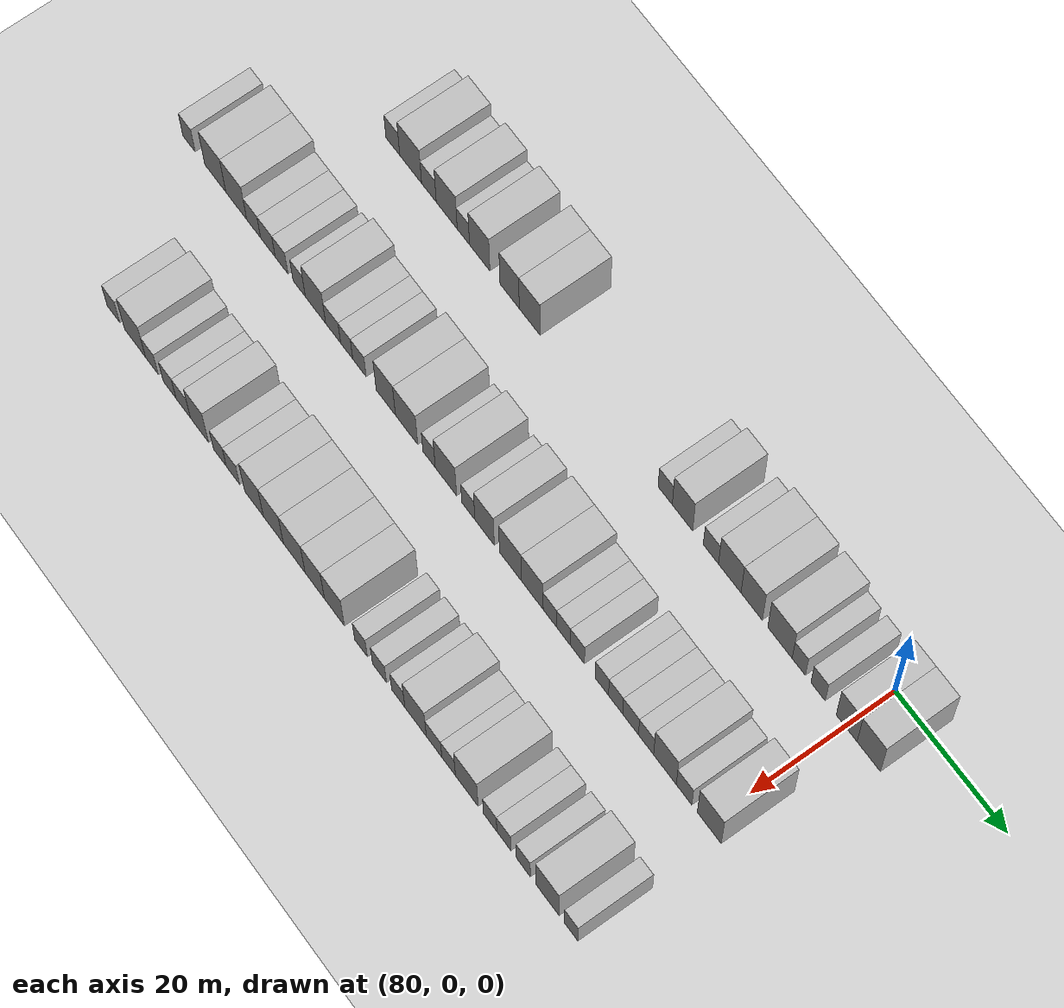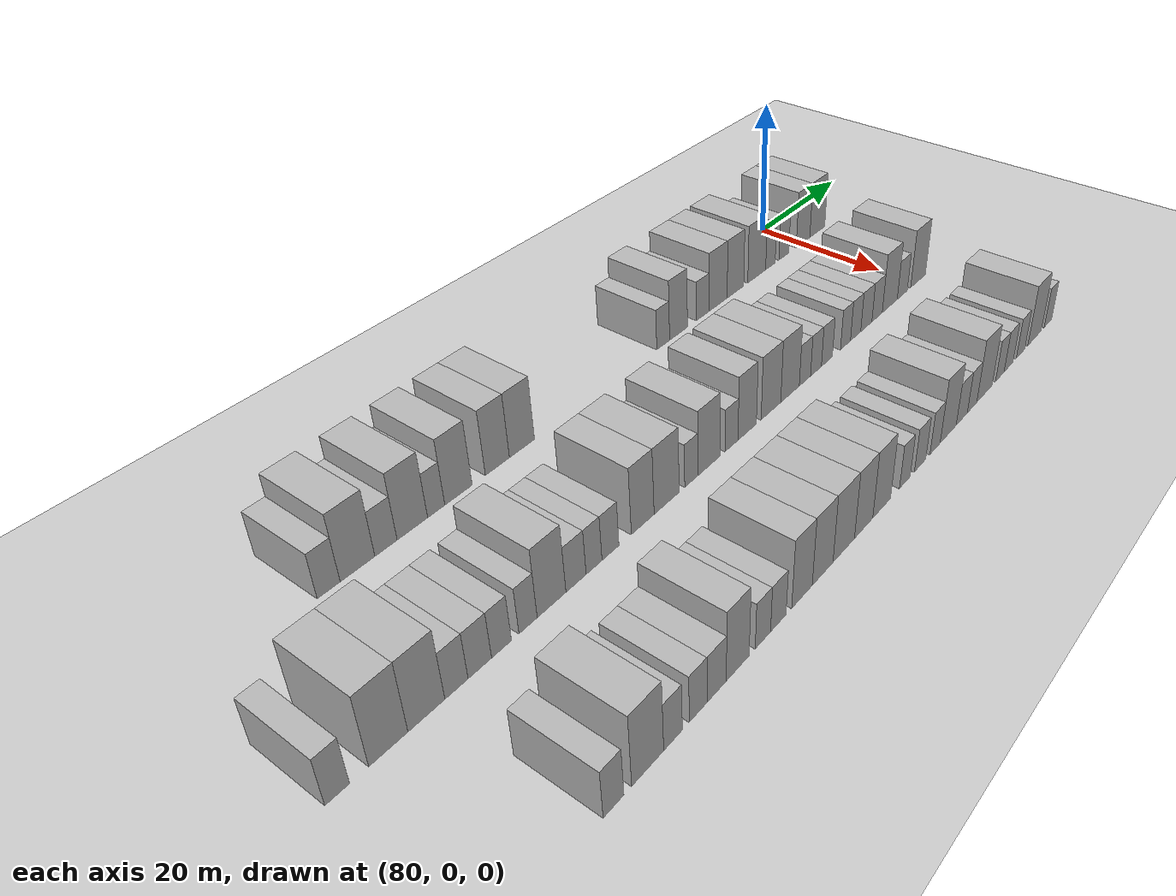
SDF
<sdf version="1.6">
 <world name="default">
  <include>
   <name>ground_plane_2</name>
   <uri>model://HANNAS_ground_plane</uri>
   <pose>100 0 0  0 0 0</pose>
  </include>
  <model name="building_565">
   <static>1</static>
   <pose>82.0000 -86.5752 0 0.000000 0.000000 0.000000</pose>
   <link name="link">
    <pose>0 0 3.00 0 0 0</pose>
    <collision name="collision"><geometry><box><size>10.0000 2.8046 6.0000</size></box></geometry></collision>
    <visual name="visual">
     <cast_shadows>0</cast_shadows>
     <geometry><box><size>10.0000 2.8046 6.0000</size></box></geometry>
     <material>
      <script>
       <uri>model://HANNAS_wall/materials/scripts</uri>
       <uri>model://HANNAS_wall/materials/textures</uri>
       <name>vrc/HANNAS_wall</name>
      </script>
     </material>
    </visual>
   </link>
  </model>
  <model name="building_566">
   <static>1</static>
   <pose>82.0000 -82.9776 0 0.000000 0.000000 0.000000</pose>
   <link name="link">
    <pose>0 0 4.50 0 0 0</pose>
    <collision name="collision"><geometry><box><size>10.0000 4.3905 9.0000</size></box></geometry></collision>
    <visual name="visual">
     <cast_shadows>0</cast_shadows>
     <geometry><box><size>10.0000 4.3905 9.0000</size></box></geometry>
     <material>
      <script>
       <uri>model://HANNAS_wall/materials/scripts</uri>
       <uri>model://HANNAS_wall/materials/textures</uri>
       <name>vrc/HANNAS_wall</name>
      </script>
     </material>
    </visual>
   </link>
  </model>
  <model name="building_567">
   <static>1</static>
   <pose>82.0000 -79.3139 0 0.000000 0.000000 0.000000</pose>
   <link name="link">
    <pose>0 0 3.00 0 0 0</pose>
    <collision name="collision"><geometry><box><size>10.0000 2.9370 6.0000</size></box></geometry></collision>
    <visual name="visual">
     <cast_shadows>0</cast_shadows>
     <geometry><box><size>10.0000 2.9370 6.0000</size></box></geometry>
     <material>
      <script>
       <uri>model://HANNAS_wall/materials/scripts</uri>
       <uri>model://HANNAS_wall/materials/textures</uri>
       <name>vrc/HANNAS_wall</name>
      </script>
     </material>
    </visual>
   </link>
  </model>
  <model name="building_568">
   <static>1</static>
   <pose>82.0000 -75.7535 0 0.000000 0.000000 0.000000</pose>
   <link name="link">
    <pose>0 0 4.50 0 0 0</pose>
    <collision name="collision"><geometry><box><size>10.0000 4.1837 9.0000</size></box></geometry></collision>
    <visual name="visual">
     <cast_shadows>0</cast_shadows>
     <geometry><box><size>10.0000 4.1837 9.0000</size></box></geometry>
     <material>
      <script>
       <uri>model://HANNAS_wall/materials/scripts</uri>
       <uri>model://HANNAS_wall/materials/textures</uri>
       <name>vrc/HANNAS_wall</name>
      </script>
     </material>
    </visual>
   </link>
  </model>
  <model name="building_569">
   <static>1</static>
   <pose>82.0000 -72.4386 0 0.000000 0.000000 0.000000</pose>
   <link name="link">
    <pose>0 0 3.00 0 0 0</pose>
    <collision name="collision"><geometry><box><size>10.0000 2.4463 6.0000</size></box></geometry></collision>
    <visual name="visual">
     <cast_shadows>0</cast_shadows>
     <geometry><box><size>10.0000 2.4463 6.0000</size></box></geometry>
     <material>
      <script>
       <uri>model://HANNAS_wall/materials/scripts</uri>
       <uri>model://HANNAS_wall/materials/textures</uri>
       <name>vrc/HANNAS_wall</name>
      </script>
     </material>
    </visual>
   </link>
  </model>
  <model name="building_570">
   <static>1</static>
   <pose>82.0000 -69.2033 0 0.000000 0.000000 0.000000</pose>
   <link name="link">
    <pose>0 0 4.50 0 0 0</pose>
    <collision name="collision"><geometry><box><size>10.0000 4.0243 9.0000</size></box></geometry></collision>
    <visual name="visual">
     <cast_shadows>0</cast_shadows>
     <geometry><box><size>10.0000 4.0243 9.0000</size></box></geometry>
     <material>
      <script>
       <uri>model://HANNAS_wall/materials/scripts</uri>
       <uri>model://HANNAS_wall/materials/textures</uri>
       <name>vrc/HANNAS_wall</name>
      </script>
     </material>
    </visual>
   </link>
  </model>
  <model name="building_571">
   <static>1</static>
   <pose>82.0000 -63.3000 0 0.000000 0.000000 0.000000</pose>
   <link name="link">
    <pose>0 0 4.50 0 0 0</pose>
    <collision name="collision"><geometry><box><size>10.0000 3.7823 9.0000</size></box></geometry></collision>
    <visual name="visual">
     <cast_shadows>0</cast_shadows>
     <geometry><box><size>10.0000 3.7823 9.0000</size></box></geometry>
     <material>
      <script>
       <uri>model://HANNAS_wall/materials/scripts</uri>
       <uri>model://HANNAS_wall/materials/textures</uri>
       <name>vrc/HANNAS_wall</name>
      </script>
     </material>
    </visual>
   </link>
  </model>
  <model name="building_572">
   <static>1</static>
   <pose>82.0000 -59.3717 0 0.000000 0.000000 0.000000</pose>
   <link name="link">
    <pose>0 0 4.50 0 0 0</pose>
    <collision name="collision"><geometry><box><size>10.0000 4.0742 9.0000</size></box></geometry></collision>
    <visual name="visual">
     <cast_shadows>0</cast_shadows>
     <geometry><box><size>10.0000 4.0742 9.0000</size></box></geometry>
     <material>
      <script>
       <uri>model://HANNAS_wall/materials/scripts</uri>
       <uri>model://HANNAS_wall/materials/textures</uri>
       <name>vrc/HANNAS_wall</name>
      </script>
     </material>
    </visual>
   </link>
  </model>
  <model name="building_573">
   <static>1</static>
   <pose>82.0000 -33.3156 0 0.000000 0.000000 0.000000</pose>
   <link name="link">
    <pose>0 0 3.00 0 0 0</pose>
    <collision name="collision"><geometry><box><size>10.0000 2.6793 6.0000</size></box></geometry></collision>
    <visual name="visual">
     <cast_shadows>0</cast_shadows>
     <geometry><box><size>10.0000 2.6793 6.0000</size></box></geometry>
     <material>
      <script>
       <uri>model://HANNAS_wall/materials/scripts</uri>
       <uri>model://HANNAS_wall/materials/textures</uri>
       <name>vrc/HANNAS_wall</name>
      </script>
     </material>
    </visual>
   </link>
  </model>
  <model name="building_574">
   <static>1</static>
   <pose>82.0000 -30.0600 0 0.000000 0.000000 0.000000</pose>
   <link name="link">
    <pose>0 0 4.50 0 0 0</pose>
    <collision name="collision"><geometry><box><size>10.0000 3.8319 9.0000</size></box></geometry></collision>
    <visual name="visual">
     <cast_shadows>0</cast_shadows>
     <geometry><box><size>10.0000 3.8319 9.0000</size></box></geometry>
     <material>
      <script>
       <uri>model://HANNAS_wall/materials/scripts</uri>
       <uri>model://HANNAS_wall/materials/textures</uri>
       <name>vrc/HANNAS_wall</name>
      </script>
     </material>
    </visual>
   </link>
  </model>
  <model name="building_575">
   <static>1</static>
   <pose>82.0000 -24.7283 0 0.000000 0.000000 0.000000</pose>
   <link name="link">
    <pose>0 0 3.00 0 0 0</pose>
    <collision name="collision"><geometry><box><size>10.0000 2.8315 6.0000</size></box></geometry></collision>
    <visual name="visual">
     <cast_shadows>0</cast_shadows>
     <geometry><box><size>10.0000 2.8315 6.0000</size></box></geometry>
     <material>
      <script>
       <uri>model://HANNAS_wall/materials/scripts</uri>
       <uri>model://HANNAS_wall/materials/textures</uri>
       <name>vrc/HANNAS_wall</name>
      </script>
     </material>
    </visual>
   </link>
  </model>
  <model name="building_576">
   <static>1</static>
   <pose>82.0000 -21.2152 0 0.000000 0.000000 0.000000</pose>
   <link name="link">
    <pose>0 0 4.50 0 0 0</pose>
    <collision name="collision"><geometry><box><size>10.0000 4.1946 9.0000</size></box></geometry></collision>
    <visual name="visual">
     <cast_shadows>0</cast_shadows>
     <geometry><box><size>10.0000 4.1946 9.0000</size></box></geometry>
     <material>
      <script>
       <uri>model://HANNAS_wall/materials/scripts</uri>
       <uri>model://HANNAS_wall/materials/textures</uri>
       <name>vrc/HANNAS_wall</name>
      </script>
     </material>
    </visual>
   </link>
  </model>
  <model name="building_577">
   <static>1</static>
   <pose>82.0000 -17.1370 0 0.000000 0.000000 0.000000</pose>
   <link name="link">
    <pose>0 0 4.50 0 0 0</pose>
    <collision name="collision"><geometry><box><size>10.0000 3.9616 9.0000</size></box></geometry></collision>
    <visual name="visual">
     <cast_shadows>0</cast_shadows>
     <geometry><box><size>10.0000 3.9616 9.0000</size></box></geometry>
     <material>
      <script>
       <uri>model://HANNAS_wall/materials/scripts</uri>
       <uri>model://HANNAS_wall/materials/textures</uri>
       <name>vrc/HANNAS_wall</name>
      </script>
     </material>
    </visual>
   </link>
  </model>
  <model name="building_578">
   <static>1</static>
   <pose>82.0000 -11.9134 0 0.000000 0.000000 0.000000</pose>
   <link name="link">
    <pose>0 0 4.50 0 0 0</pose>
    <collision name="collision"><geometry><box><size>10.0000 4.4856 9.0000</size></box></geometry></collision>
    <visual name="visual">
     <cast_shadows>0</cast_shadows>
     <geometry><box><size>10.0000 4.4856 9.0000</size></box></geometry>
     <material>
      <script>
       <uri>model://HANNAS_wall/materials/scripts</uri>
       <uri>model://HANNAS_wall/materials/textures</uri>
       <name>vrc/HANNAS_wall</name>
      </script>
     </material>
    </visual>
   </link>
  </model>
  <model name="building_579">
   <static>1</static>
   <pose>82.0000 -8.4516 0 0.000000 0.000000 0.000000</pose>
   <link name="link">
    <pose>0 0 3.00 0 0 0</pose>
    <collision name="collision"><geometry><box><size>10.0000 2.4379 6.0000</size></box></geometry></collision>
    <visual name="visual">
     <cast_shadows>0</cast_shadows>
     <geometry><box><size>10.0000 2.4379 6.0000</size></box></geometry>
     <material>
      <script>
       <uri>model://HANNAS_wall/materials/scripts</uri>
       <uri>model://HANNAS_wall/materials/textures</uri>
       <name>vrc/HANNAS_wall</name>
      </script>
     </material>
    </visual>
   </link>
  </model>
  <model name="building_580">
   <static>1</static>
   <pose>82.0000 -4.9241 0 0.000000 0.000000 0.000000</pose>
   <link name="link">
    <pose>0 0 3.00 0 0 0</pose>
    <collision name="collision"><geometry><box><size>10.0000 2.6172 6.0000</size></box></geometry></collision>
    <visual name="visual">
     <cast_shadows>0</cast_shadows>
     <geometry><box><size>10.0000 2.6172 6.0000</size></box></geometry>
     <material>
      <script>
       <uri>model://HANNAS_wall/materials/scripts</uri>
       <uri>model://HANNAS_wall/materials/textures</uri>
       <name>vrc/HANNAS_wall</name>
      </script>
     </material>
    </visual>
   </link>
  </model>
  <model name="building_581">
   <static>1</static>
   <pose>82.0000 0.2677 0 0.000000 0.000000 0.000000</pose>
   <link name="link">
    <pose>0 0 4.50 0 0 0</pose>
    <collision name="collision"><geometry><box><size>10.0000 3.7663 9.0000</size></box></geometry></collision>
    <visual name="visual">
     <cast_shadows>0</cast_shadows>
     <geometry><box><size>10.0000 3.7663 9.0000</size></box></geometry>
     <material>
      <script>
       <uri>model://HANNAS_wall/materials/scripts</uri>
       <uri>model://HANNAS_wall/materials/textures</uri>
       <name>vrc/HANNAS_wall</name>
      </script>
     </material>
    </visual>
   </link>
  </model>
  <model name="building_582">
   <static>1</static>
   <pose>82.0000 4.2609 0 0.000000 0.000000 0.000000</pose>
   <link name="link">
    <pose>0 0 4.50 0 0 0</pose>
    <collision name="collision"><geometry><box><size>10.0000 4.2202 9.0000</size></box></geometry></collision>
    <visual name="visual">
     <cast_shadows>0</cast_shadows>
     <geometry><box><size>10.0000 4.2202 9.0000</size></box></geometry>
     <material>
      <script>
       <uri>model://HANNAS_wall/materials/scripts</uri>
       <uri>model://HANNAS_wall/materials/textures</uri>
       <name>vrc/HANNAS_wall</name>
      </script>
     </material>
    </visual>
   </link>
  </model>
  <model name="building_730">
   <static>1</static>
   <pose>101.0000 -100.7752 0 0.000000 0.000000 0.000000</pose>
   <link name="link">
    <pose>0 0 3.00 0 0 0</pose>
    <collision name="collision"><geometry><box><size>10.0000 2.5496 6.0000</size></box></geometry></collision>
    <visual name="visual">
     <cast_shadows>0</cast_shadows>
     <geometry><box><size>10.0000 2.5496 6.0000</size></box></geometry>
     <material>
      <script>
       <uri>model://HANNAS_wall/materials/scripts</uri>
       <uri>model://HANNAS_wall/materials/textures</uri>
       <name>vrc/HANNAS_wall</name>
      </script>
     </material>
    </visual>
   </link>
  </model>
  <model name="building_731">
   <static>1</static>
   <pose>101.0000 -95.3427 0 0.000000 0.000000 0.000000</pose>
   <link name="link">
    <pose>0 0 4.50 0 0 0</pose>
    <collision name="collision"><geometry><box><size>10.0000 4.3153 9.0000</size></box></geometry></collision>
    <visual name="visual">
     <cast_shadows>0</cast_shadows>
     <geometry><box><size>10.0000 4.3153 9.0000</size></box></geometry>
     <material>
      <script>
       <uri>model://HANNAS_wall/materials/scripts</uri>
       <uri>model://HANNAS_wall/materials/textures</uri>
       <name>vrc/HANNAS_wall</name>
      </script>
     </material>
    </visual>
   </link>
  </model>
  <model name="building_732">
   <static>1</static>
   <pose>101.0000 -91.0381 0 0.000000 0.000000 0.000000</pose>
   <link name="link">
    <pose>0 0 4.50 0 0 0</pose>
    <collision name="collision"><geometry><box><size>10.0000 4.2939 9.0000</size></box></geometry></collision>
    <visual name="visual">
     <cast_shadows>0</cast_shadows>
     <geometry><box><size>10.0000 4.2939 9.0000</size></box></geometry>
     <material>
      <script>
       <uri>model://HANNAS_wall/materials/scripts</uri>
       <uri>model://HANNAS_wall/materials/textures</uri>
       <name>vrc/HANNAS_wall</name>
      </script>
     </material>
    </visual>
   </link>
  </model>
  <model name="building_733">
   <static>1</static>
   <pose>101.0000 -87.4756 0 0.000000 0.000000 0.000000</pose>
   <link name="link">
    <pose>0 0 3.00 0 0 0</pose>
    <collision name="collision"><geometry><box><size>10.0000 2.8309 6.0000</size></box></geometry></collision>
    <visual name="visual">
     <cast_shadows>0</cast_shadows>
     <geometry><box><size>10.0000 2.8309 6.0000</size></box></geometry>
     <material>
      <script>
       <uri>model://HANNAS_wall/materials/scripts</uri>
       <uri>model://HANNAS_wall/materials/textures</uri>
       <name>vrc/HANNAS_wall</name>
      </script>
     </material>
    </visual>
   </link>
  </model>
  <model name="building_734">
   <static>1</static>
   <pose>101.0000 -84.5750 0 0.000000 0.000000 0.000000</pose>
   <link name="link">
    <pose>0 0 3.00 0 0 0</pose>
    <collision name="collision"><geometry><box><size>10.0000 2.9704 6.0000</size></box></geometry></collision>
    <visual name="visual">
     <cast_shadows>0</cast_shadows>
     <geometry><box><size>10.0000 2.9704 6.0000</size></box></geometry>
     <material>
      <script>
       <uri>model://HANNAS_wall/materials/scripts</uri>
       <uri>model://HANNAS_wall/materials/textures</uri>
       <name>vrc/HANNAS_wall</name>
      </script>
     </material>
    </visual>
   </link>
  </model>
  <model name="building_735">
   <static>1</static>
   <pose>101.0000 -81.7910 0 0.000000 0.000000 0.000000</pose>
   <link name="link">
    <pose>0 0 3.00 0 0 0</pose>
    <collision name="collision"><geometry><box><size>10.0000 2.5975 6.0000</size></box></geometry></collision>
    <visual name="visual">
     <cast_shadows>0</cast_shadows>
     <geometry><box><size>10.0000 2.5975 6.0000</size></box></geometry>
     <material>
      <script>
       <uri>model://HANNAS_wall/materials/scripts</uri>
       <uri>model://HANNAS_wall/materials/textures</uri>
       <name>vrc/HANNAS_wall</name>
      </script>
     </material>
    </visual>
   </link>
  </model>
  <model name="building_736">
   <static>1</static>
   <pose>101.0000 -78.2462 0 0.000000 0.000000 0.000000</pose>
   <link name="link">
    <pose>0 0 3.00 0 0 0</pose>
    <collision name="collision"><geometry><box><size>10.0000 2.4922 6.0000</size></box></geometry></collision>
    <visual name="visual">
     <cast_shadows>0</cast_shadows>
     <geometry><box><size>10.0000 2.4922 6.0000</size></box></geometry>
     <material>
      <script>
       <uri>model://HANNAS_wall/materials/scripts</uri>
       <uri>model://HANNAS_wall/materials/textures</uri>
       <name>vrc/HANNAS_wall</name>
      </script>
     </material>
    </visual>
   </link>
  </model>
  <model name="building_737">
   <static>1</static>
   <pose>101.0000 -74.9540 0 0.000000 0.000000 0.000000</pose>
   <link name="link">
    <pose>0 0 4.50 0 0 0</pose>
    <collision name="collision"><geometry><box><size>10.0000 4.0922 9.0000</size></box></geometry></collision>
    <visual name="visual">
     <cast_shadows>0</cast_shadows>
     <geometry><box><size>10.0000 4.0922 9.0000</size></box></geometry>
     <material>
      <script>
       <uri>model://HANNAS_wall/materials/scripts</uri>
       <uri>model://HANNAS_wall/materials/textures</uri>
       <name>vrc/HANNAS_wall</name>
      </script>
     </material>
    </visual>
   </link>
  </model>
  <model name="building_738">
   <static>1</static>
   <pose>101.0000 -71.4143 0 0.000000 0.000000 0.000000</pose>
   <link name="link">
    <pose>0 0 3.00 0 0 0</pose>
    <collision name="collision"><geometry><box><size>10.0000 2.9872 6.0000</size></box></geometry></collision>
    <visual name="visual">
     <cast_shadows>0</cast_shadows>
     <geometry><box><size>10.0000 2.9872 6.0000</size></box></geometry>
     <material>
      <script>
       <uri>model://HANNAS_wall/materials/scripts</uri>
       <uri>model://HANNAS_wall/materials/textures</uri>
       <name>vrc/HANNAS_wall</name>
      </script>
     </material>
    </visual>
   </link>
  </model>
  <model name="building_739">
   <static>1</static>
   <pose>101.0000 -68.7052 0 0.000000 0.000000 0.000000</pose>
   <link name="link">
    <pose>0 0 3.00 0 0 0</pose>
    <collision name="collision"><geometry><box><size>10.0000 2.4309 6.0000</size></box></geometry></collision>
    <visual name="visual">
     <cast_shadows>0</cast_shadows>
     <geometry><box><size>10.0000 2.4309 6.0000</size></box></geometry>
     <material>
      <script>
       <uri>model://HANNAS_wall/materials/scripts</uri>
       <uri>model://HANNAS_wall/materials/textures</uri>
       <name>vrc/HANNAS_wall</name>
      </script>
     </material>
    </visual>
   </link>
  </model>
  <model name="building_740">
   <static>1</static>
   <pose>101.0000 -66.1566 0 0.000000 0.000000 0.000000</pose>
   <link name="link">
    <pose>0 0 3.00 0 0 0</pose>
    <collision name="collision"><geometry><box><size>10.0000 2.6663 6.0000</size></box></geometry></collision>
    <visual name="visual">
     <cast_shadows>0</cast_shadows>
     <geometry><box><size>10.0000 2.6663 6.0000</size></box></geometry>
     <material>
      <script>
       <uri>model://HANNAS_wall/materials/scripts</uri>
       <uri>model://HANNAS_wall/materials/textures</uri>
       <name>vrc/HANNAS_wall</name>
      </script>
     </material>
    </visual>
   </link>
  </model>
  <model name="building_741">
   <static>1</static>
   <pose>101.0000 -60.9216 0 0.000000 0.000000 0.000000</pose>
   <link name="link">
    <pose>0 0 4.50 0 0 0</pose>
    <collision name="collision"><geometry><box><size>10.0000 3.8037 9.0000</size></box></geometry></collision>
    <visual name="visual">
     <cast_shadows>0</cast_shadows>
     <geometry><box><size>10.0000 3.8037 9.0000</size></box></geometry>
     <material>
      <script>
       <uri>model://HANNAS_wall/materials/scripts</uri>
       <uri>model://HANNAS_wall/materials/textures</uri>
       <name>vrc/HANNAS_wall</name>
      </script>
     </material>
    </visual>
   </link>
  </model>
  <model name="building_742">
   <static>1</static>
   <pose>101.0000 -56.8356 0 0.000000 0.000000 0.000000</pose>
   <link name="link">
    <pose>0 0 4.50 0 0 0</pose>
    <collision name="collision"><geometry><box><size>10.0000 4.3682 9.0000</size></box></geometry></collision>
    <visual name="visual">
     <cast_shadows>0</cast_shadows>
     <geometry><box><size>10.0000 4.3682 9.0000</size></box></geometry>
     <material>
      <script>
       <uri>model://HANNAS_wall/materials/scripts</uri>
       <uri>model://HANNAS_wall/materials/textures</uri>
       <name>vrc/HANNAS_wall</name>
      </script>
     </material>
    </visual>
   </link>
  </model>
  <model name="building_743">
   <static>1</static>
   <pose>101.0000 -52.4413 0 0.000000 0.000000 0.000000</pose>
   <link name="link">
    <pose>0 0 3.00 0 0 0</pose>
    <collision name="collision"><geometry><box><size>10.0000 2.4203 6.0000</size></box></geometry></collision>
    <visual name="visual">
     <cast_shadows>0</cast_shadows>
     <geometry><box><size>10.0000 2.4203 6.0000</size></box></geometry>
     <material>
      <script>
       <uri>model://HANNAS_wall/materials/scripts</uri>
       <uri>model://HANNAS_wall/materials/textures</uri>
       <name>vrc/HANNAS_wall</name>
      </script>
     </material>
    </visual>
   </link>
  </model>
  <model name="building_744">
   <static>1</static>
   <pose>101.0000 -49.1548 0 0.000000 0.000000 0.000000</pose>
   <link name="link">
    <pose>0 0 4.50 0 0 0</pose>
    <collision name="collision"><geometry><box><size>10.0000 4.1528 9.0000</size></box></geometry></collision>
    <visual name="visual">
     <cast_shadows>0</cast_shadows>
     <geometry><box><size>10.0000 4.1528 9.0000</size></box></geometry>
     <material>
      <script>
       <uri>model://HANNAS_wall/materials/scripts</uri>
       <uri>model://HANNAS_wall/materials/textures</uri>
       <name>vrc/HANNAS_wall</name>
      </script>
     </material>
    </visual>
   </link>
  </model>
  <model name="building_745">
   <static>1</static>
   <pose>101.0000 -44.8079 0 0.000000 0.000000 0.000000</pose>
   <link name="link">
    <pose>0 0 3.00 0 0 0</pose>
    <collision name="collision"><geometry><box><size>10.0000 2.5410 6.0000</size></box></geometry></collision>
    <visual name="visual">
     <cast_shadows>0</cast_shadows>
     <geometry><box><size>10.0000 2.5410 6.0000</size></box></geometry>
     <material>
      <script>
       <uri>model://HANNAS_wall/materials/scripts</uri>
       <uri>model://HANNAS_wall/materials/textures</uri>
       <name>vrc/HANNAS_wall</name>
      </script>
     </material>
    </visual>
   </link>
  </model>
  <model name="building_746">
   <static>1</static>
   <pose>101.0000 -41.6679 0 0.000000 0.000000 0.000000</pose>
   <link name="link">
    <pose>0 0 4.50 0 0 0</pose>
    <collision name="collision"><geometry><box><size>10.0000 3.7389 9.0000</size></box></geometry></collision>
    <visual name="visual">
     <cast_shadows>0</cast_shadows>
     <geometry><box><size>10.0000 3.7389 9.0000</size></box></geometry>
     <material>
      <script>
       <uri>model://HANNAS_wall/materials/scripts</uri>
       <uri>model://HANNAS_wall/materials/textures</uri>
       <name>vrc/HANNAS_wall</name>
      </script>
     </material>
    </visual>
   </link>
  </model>
  <model name="building_747">
   <static>1</static>
   <pose>101.0000 -36.6987 0 0.000000 0.000000 0.000000</pose>
   <link name="link">
    <pose>0 0 4.50 0 0 0</pose>
    <collision name="collision"><geometry><box><size>10.0000 4.1995 9.0000</size></box></geometry></collision>
    <visual name="visual">
     <cast_shadows>0</cast_shadows>
     <geometry><box><size>10.0000 4.1995 9.0000</size></box></geometry>
     <material>
      <script>
       <uri>model://HANNAS_wall/materials/scripts</uri>
       <uri>model://HANNAS_wall/materials/textures</uri>
       <name>vrc/HANNAS_wall</name>
      </script>
     </material>
    </visual>
   </link>
  </model>
  <model name="building_748">
   <static>1</static>
   <pose>101.0000 -32.5332 0 0.000000 0.000000 0.000000</pose>
   <link name="link">
    <pose>0 0 4.50 0 0 0</pose>
    <collision name="collision"><geometry><box><size>10.0000 4.1314 9.0000</size></box></geometry></collision>
    <visual name="visual">
     <cast_shadows>0</cast_shadows>
     <geometry><box><size>10.0000 4.1314 9.0000</size></box></geometry>
     <material>
      <script>
       <uri>model://HANNAS_wall/materials/scripts</uri>
       <uri>model://HANNAS_wall/materials/textures</uri>
       <name>vrc/HANNAS_wall</name>
      </script>
     </material>
    </visual>
   </link>
  </model>
  <model name="building_749">
   <static>1</static>
   <pose>101.0000 -29.1732 0 0.000000 0.000000 0.000000</pose>
   <link name="link">
    <pose>0 0 3.00 0 0 0</pose>
    <collision name="collision"><geometry><box><size>10.0000 2.5886 6.0000</size></box></geometry></collision>
    <visual name="visual">
     <cast_shadows>0</cast_shadows>
     <geometry><box><size>10.0000 2.5886 6.0000</size></box></geometry>
     <material>
      <script>
       <uri>model://HANNAS_wall/materials/scripts</uri>
       <uri>model://HANNAS_wall/materials/textures</uri>
       <name>vrc/HANNAS_wall</name>
      </script>
     </material>
    </visual>
   </link>
  </model>
  <model name="building_750">
   <static>1</static>
   <pose>101.0000 -26.5993 0 0.000000 0.000000 0.000000</pose>
   <link name="link">
    <pose>0 0 3.00 0 0 0</pose>
    <collision name="collision"><geometry><box><size>10.0000 2.5591 6.0000</size></box></geometry></collision>
    <visual name="visual">
     <cast_shadows>0</cast_shadows>
     <geometry><box><size>10.0000 2.5591 6.0000</size></box></geometry>
     <material>
      <script>
       <uri>model://HANNAS_wall/materials/scripts</uri>
       <uri>model://HANNAS_wall/materials/textures</uri>
       <name>vrc/HANNAS_wall</name>
      </script>
     </material>
    </visual>
   </link>
  </model>
  <model name="building_751">
   <static>1</static>
   <pose>101.0000 -23.9947 0 0.000000 0.000000 0.000000</pose>
   <link name="link">
    <pose>0 0 3.00 0 0 0</pose>
    <collision name="collision"><geometry><box><size>10.0000 2.6501 6.0000</size></box></geometry></collision>
    <visual name="visual">
     <cast_shadows>0</cast_shadows>
     <geometry><box><size>10.0000 2.6501 6.0000</size></box></geometry>
     <material>
      <script>
       <uri>model://HANNAS_wall/materials/scripts</uri>
       <uri>model://HANNAS_wall/materials/textures</uri>
       <name>vrc/HANNAS_wall</name>
      </script>
     </material>
    </visual>
   </link>
  </model>
  <model name="building_752">
   <static>1</static>
   <pose>101.0000 -19.4148 0 0.000000 0.000000 0.000000</pose>
   <link name="link">
    <pose>0 0 3.00 0 0 0</pose>
    <collision name="collision"><geometry><box><size>10.0000 2.5098 6.0000</size></box></geometry></collision>
    <visual name="visual">
     <cast_shadows>0</cast_shadows>
     <geometry><box><size>10.0000 2.5098 6.0000</size></box></geometry>
     <material>
      <script>
       <uri>model://HANNAS_wall/materials/scripts</uri>
       <uri>model://HANNAS_wall/materials/textures</uri>
       <name>vrc/HANNAS_wall</name>
      </script>
     </material>
    </visual>
   </link>
  </model>
  <model name="building_753">
   <static>1</static>
   <pose>101.0000 -16.8417 0 0.000000 0.000000 0.000000</pose>
   <link name="link">
    <pose>0 0 3.00 0 0 0</pose>
    <collision name="collision"><geometry><box><size>10.0000 2.6364 6.0000</size></box></geometry></collision>
    <visual name="visual">
     <cast_shadows>0</cast_shadows>
     <geometry><box><size>10.0000 2.6364 6.0000</size></box></geometry>
     <material>
      <script>
       <uri>model://HANNAS_wall/materials/scripts</uri>
       <uri>model://HANNAS_wall/materials/textures</uri>
       <name>vrc/HANNAS_wall</name>
      </script>
     </material>
    </visual>
   </link>
  </model>
  <model name="building_754">
   <static>1</static>
   <pose>101.0000 -14.0508 0 0.000000 0.000000 0.000000</pose>
   <link name="link">
    <pose>0 0 3.00 0 0 0</pose>
    <collision name="collision"><geometry><box><size>10.0000 2.9453 6.0000</size></box></geometry></collision>
    <visual name="visual">
     <cast_shadows>0</cast_shadows>
     <geometry><box><size>10.0000 2.9453 6.0000</size></box></geometry>
     <material>
      <script>
       <uri>model://HANNAS_wall/materials/scripts</uri>
       <uri>model://HANNAS_wall/materials/textures</uri>
       <name>vrc/HANNAS_wall</name>
      </script>
     </material>
    </visual>
   </link>
  </model>
  <model name="building_755">
   <static>1</static>
   <pose>101.0000 -11.1760 0 0.000000 0.000000 0.000000</pose>
   <link name="link">
    <pose>0 0 3.00 0 0 0</pose>
    <collision name="collision"><geometry><box><size>10.0000 2.8043 6.0000</size></box></geometry></collision>
    <visual name="visual">
     <cast_shadows>0</cast_shadows>
     <geometry><box><size>10.0000 2.8043 6.0000</size></box></geometry>
     <material>
      <script>
       <uri>model://HANNAS_wall/materials/scripts</uri>
       <uri>model://HANNAS_wall/materials/textures</uri>
       <name>vrc/HANNAS_wall</name>
      </script>
     </material>
    </visual>
   </link>
  </model>
  <model name="building_756">
   <static>1</static>
   <pose>101.0000 -7.6848 0 0.000000 0.000000 0.000000</pose>
   <link name="link">
    <pose>0 0 4.50 0 0 0</pose>
    <collision name="collision"><geometry><box><size>10.0000 4.1781 9.0000</size></box></geometry></collision>
    <visual name="visual">
     <cast_shadows>0</cast_shadows>
     <geometry><box><size>10.0000 4.1781 9.0000</size></box></geometry>
     <material>
      <script>
       <uri>model://HANNAS_wall/materials/scripts</uri>
       <uri>model://HANNAS_wall/materials/textures</uri>
       <name>vrc/HANNAS_wall</name>
      </script>
     </material>
    </visual>
   </link>
  </model>
  <model name="building_757">
   <static>1</static>
   <pose>101.0000 -4.1655 0 0.000000 0.000000 0.000000</pose>
   <link name="link">
    <pose>0 0 3.00 0 0 0</pose>
    <collision name="collision"><geometry><box><size>10.0000 2.8604 6.0000</size></box></geometry></collision>
    <visual name="visual">
     <cast_shadows>0</cast_shadows>
     <geometry><box><size>10.0000 2.8604 6.0000</size></box></geometry>
     <material>
      <script>
       <uri>model://HANNAS_wall/materials/scripts</uri>
       <uri>model://HANNAS_wall/materials/textures</uri>
       <name>vrc/HANNAS_wall</name>
      </script>
     </material>
    </visual>
   </link>
  </model>
  <model name="building_758">
   <static>1</static>
   <pose>101.0000 0.4440 0 0.000000 0.000000 0.000000</pose>
   <link name="link">
    <pose>0 0 4.50 0 0 0</pose>
    <collision name="collision"><geometry><box><size>10.0000 4.3586 9.0000</size></box></geometry></collision>
    <visual name="visual">
     <cast_shadows>0</cast_shadows>
     <geometry><box><size>10.0000 4.3586 9.0000</size></box></geometry>
     <material>
      <script>
       <uri>model://HANNAS_wall/materials/scripts</uri>
       <uri>model://HANNAS_wall/materials/textures</uri>
       <name>vrc/HANNAS_wall</name>
      </script>
     </material>
    </visual>
   </link>
  </model>
  <model name="building_906">
   <static>1</static>
   <pose>120.0000 -88.1248 0 0.000000 0.000000 0.000000</pose>
   <link name="link">
    <pose>0 0 3.00 0 0 0</pose>
    <collision name="collision"><geometry><box><size>10.0000 2.6106 6.0000</size></box></geometry></collision>
    <visual name="visual">
     <cast_shadows>0</cast_shadows>
     <geometry><box><size>10.0000 2.6106 6.0000</size></box></geometry>
     <material>
      <script>
       <uri>model://HANNAS_wall/materials/scripts</uri>
       <uri>model://HANNAS_wall/materials/textures</uri>
       <name>vrc/HANNAS_wall</name>
      </script>
     </material>
    </visual>
   </link>
  </model>
  <model name="building_907">
   <static>1</static>
   <pose>120.0000 -83.6749 0 0.000000 0.000000 0.000000</pose>
   <link name="link">
    <pose>0 0 4.50 0 0 0</pose>
    <collision name="collision"><geometry><box><size>10.0000 4.2891 9.0000</size></box></geometry></collision>
    <visual name="visual">
     <cast_shadows>0</cast_shadows>
     <geometry><box><size>10.0000 4.2891 9.0000</size></box></geometry>
     <material>
      <script>
       <uri>model://HANNAS_wall/materials/scripts</uri>
       <uri>model://HANNAS_wall/materials/textures</uri>
       <name>vrc/HANNAS_wall</name>
      </script>
     </material>
    </visual>
   </link>
  </model>
  <model name="building_908">
   <static>1</static>
   <pose>120.0000 -80.2241 0 0.000000 0.000000 0.000000</pose>
   <link name="link">
    <pose>0 0 3.00 0 0 0</pose>
    <collision name="collision"><geometry><box><size>10.0000 2.6125 6.0000</size></box></geometry></collision>
    <visual name="visual">
     <cast_shadows>0</cast_shadows>
     <geometry><box><size>10.0000 2.6125 6.0000</size></box></geometry>
     <material>
      <script>
       <uri>model://HANNAS_wall/materials/scripts</uri>
       <uri>model://HANNAS_wall/materials/textures</uri>
       <name>vrc/HANNAS_wall</name>
      </script>
     </material>
    </visual>
   </link>
  </model>
  <model name="building_909">
   <static>1</static>
   <pose>120.0000 -76.6199 0 0.000000 0.000000 0.000000</pose>
   <link name="link">
    <pose>0 0 3.00 0 0 0</pose>
    <collision name="collision"><geometry><box><size>10.0000 2.5960 6.0000</size></box></geometry></collision>
    <visual name="visual">
     <cast_shadows>0</cast_shadows>
     <geometry><box><size>10.0000 2.5960 6.0000</size></box></geometry>
     <material>
      <script>
       <uri>model://HANNAS_wall/materials/scripts</uri>
       <uri>model://HANNAS_wall/materials/textures</uri>
       <name>vrc/HANNAS_wall</name>
      </script>
     </material>
    </visual>
   </link>
  </model>
  <model name="building_910">
   <static>1</static>
   <pose>120.0000 -73.8537 0 0.000000 0.000000 0.000000</pose>
   <link name="link">
    <pose>0 0 3.00 0 0 0</pose>
    <collision name="collision"><geometry><box><size>10.0000 2.9364 6.0000</size></box></geometry></collision>
    <visual name="visual">
     <cast_shadows>0</cast_shadows>
     <geometry><box><size>10.0000 2.9364 6.0000</size></box></geometry>
     <material>
      <script>
       <uri>model://HANNAS_wall/materials/scripts</uri>
       <uri>model://HANNAS_wall/materials/textures</uri>
       <name>vrc/HANNAS_wall</name>
      </script>
     </material>
    </visual>
   </link>
  </model>
  <model name="building_911">
   <static>1</static>
   <pose>120.0000 -70.5653 0 0.000000 0.000000 0.000000</pose>
   <link name="link">
    <pose>0 0 4.50 0 0 0</pose>
    <collision name="collision"><geometry><box><size>10.0000 3.6403 9.0000</size></box></geometry></collision>
    <visual name="visual">
     <cast_shadows>0</cast_shadows>
     <geometry><box><size>10.0000 3.6403 9.0000</size></box></geometry>
     <material>
      <script>
       <uri>model://HANNAS_wall/materials/scripts</uri>
       <uri>model://HANNAS_wall/materials/textures</uri>
       <name>vrc/HANNAS_wall</name>
      </script>
     </material>
    </visual>
   </link>
  </model>
  <model name="building_912">
   <static>1</static>
   <pose>120.0000 -66.4638 0 0.000000 0.000000 0.000000</pose>
   <link name="link">
    <pose>0 0 3.00 0 0 0</pose>
    <collision name="collision"><geometry><box><size>10.0000 2.5627 6.0000</size></box></geometry></collision>
    <visual name="visual">
     <cast_shadows>0</cast_shadows>
     <geometry><box><size>10.0000 2.5627 6.0000</size></box></geometry>
     <material>
      <script>
       <uri>model://HANNAS_wall/materials/scripts</uri>
       <uri>model://HANNAS_wall/materials/textures</uri>
       <name>vrc/HANNAS_wall</name>
      </script>
     </material>
    </visual>
   </link>
  </model>
  <model name="building_913">
   <static>1</static>
   <pose>120.0000 -63.8465 0 0.000000 0.000000 0.000000</pose>
   <link name="link">
    <pose>0 0 3.00 0 0 0</pose>
    <collision name="collision"><geometry><box><size>10.0000 2.6718 6.0000</size></box></geometry></collision>
    <visual name="visual">
     <cast_shadows>0</cast_shadows>
     <geometry><box><size>10.0000 2.6718 6.0000</size></box></geometry>
     <material>
      <script>
       <uri>model://HANNAS_wall/materials/scripts</uri>
       <uri>model://HANNAS_wall/materials/textures</uri>
       <name>vrc/HANNAS_wall</name>
      </script>
     </material>
    </visual>
   </link>
  </model>
  <model name="building_914">
   <static>1</static>
   <pose>120.0000 -59.6447 0 0.000000 0.000000 0.000000</pose>
   <link name="link">
    <pose>0 0 4.50 0 0 0</pose>
    <collision name="collision"><geometry><box><size>10.0000 3.7320 9.0000</size></box></geometry></collision>
    <visual name="visual">
     <cast_shadows>0</cast_shadows>
     <geometry><box><size>10.0000 3.7320 9.0000</size></box></geometry>
     <material>
      <script>
       <uri>model://HANNAS_wall/materials/scripts</uri>
       <uri>model://HANNAS_wall/materials/textures</uri>
       <name>vrc/HANNAS_wall</name>
      </script>
     </material>
    </visual>
   </link>
  </model>
  <model name="building_915">
   <static>1</static>
   <pose>120.0000 -55.8078 0 0.000000 0.000000 0.000000</pose>
   <link name="link">
    <pose>0 0 4.50 0 0 0</pose>
    <collision name="collision"><geometry><box><size>10.0000 3.9417 9.0000</size></box></geometry></collision>
    <visual name="visual">
     <cast_shadows>0</cast_shadows>
     <geometry><box><size>10.0000 3.9417 9.0000</size></box></geometry>
     <material>
      <script>
       <uri>model://HANNAS_wall/materials/scripts</uri>
       <uri>model://HANNAS_wall/materials/textures</uri>
       <name>vrc/HANNAS_wall</name>
      </script>
     </material>
    </visual>
   </link>
  </model>
  <model name="building_916">
   <static>1</static>
   <pose>120.0000 -51.7002 0 0.000000 0.000000 0.000000</pose>
   <link name="link">
    <pose>0 0 4.50 0 0 0</pose>
    <collision name="collision"><geometry><box><size>10.0000 4.2737 9.0000</size></box></geometry></collision>
    <visual name="visual">
     <cast_shadows>0</cast_shadows>
     <geometry><box><size>10.0000 4.2737 9.0000</size></box></geometry>
     <material>
      <script>
       <uri>model://HANNAS_wall/materials/scripts</uri>
       <uri>model://HANNAS_wall/materials/textures</uri>
       <name>vrc/HANNAS_wall</name>
      </script>
     </material>
    </visual>
   </link>
  </model>
  <model name="building_917">
   <static>1</static>
   <pose>120.0000 -47.6621 0 0.000000 0.000000 0.000000</pose>
   <link name="link">
    <pose>0 0 4.50 0 0 0</pose>
    <collision name="collision"><geometry><box><size>10.0000 3.8024 9.0000</size></box></geometry></collision>
    <visual name="visual">
     <cast_shadows>0</cast_shadows>
     <geometry><box><size>10.0000 3.8024 9.0000</size></box></geometry>
     <material>
      <script>
       <uri>model://HANNAS_wall/materials/scripts</uri>
       <uri>model://HANNAS_wall/materials/textures</uri>
       <name>vrc/HANNAS_wall</name>
      </script>
     </material>
    </visual>
   </link>
  </model>
  <model name="building_918">
   <static>1</static>
   <pose>120.0000 -43.8256 0 0.000000 0.000000 0.000000</pose>
   <link name="link">
    <pose>0 0 4.50 0 0 0</pose>
    <collision name="collision"><geometry><box><size>10.0000 3.8706 9.0000</size></box></geometry></collision>
    <visual name="visual">
     <cast_shadows>0</cast_shadows>
     <geometry><box><size>10.0000 3.8706 9.0000</size></box></geometry>
     <material>
      <script>
       <uri>model://HANNAS_wall/materials/scripts</uri>
       <uri>model://HANNAS_wall/materials/textures</uri>
       <name>vrc/HANNAS_wall</name>
      </script>
     </material>
    </visual>
   </link>
  </model>
  <model name="building_919">
   <static>1</static>
   <pose>120.0000 -38.6626 0 0.000000 0.000000 0.000000</pose>
   <link name="link">
    <pose>0 0 3.00 0 0 0</pose>
    <collision name="collision"><geometry><box><size>10.0000 2.4554 6.0000</size></box></geometry></collision>
    <visual name="visual">
     <cast_shadows>0</cast_shadows>
     <geometry><box><size>10.0000 2.4554 6.0000</size></box></geometry>
     <material>
      <script>
       <uri>model://HANNAS_wall/materials/scripts</uri>
       <uri>model://HANNAS_wall/materials/textures</uri>
       <name>vrc/HANNAS_wall</name>
      </script>
     </material>
    </visual>
   </link>
  </model>
  <model name="building_920">
   <static>1</static>
   <pose>120.0000 -35.0886 0 0.000000 0.000000 0.000000</pose>
   <link name="link">
    <pose>0 0 3.00 0 0 0</pose>
    <collision name="collision"><geometry><box><size>10.0000 2.6927 6.0000</size></box></geometry></collision>
    <visual name="visual">
     <cast_shadows>0</cast_shadows>
     <geometry><box><size>10.0000 2.6927 6.0000</size></box></geometry>
     <material>
      <script>
       <uri>model://HANNAS_wall/materials/scripts</uri>
       <uri>model://HANNAS_wall/materials/textures</uri>
       <name>vrc/HANNAS_wall</name>
      </script>
     </material>
    </visual>
   </link>
  </model>
  <model name="building_921">
   <static>1</static>
   <pose>120.0000 -31.4763 0 0.000000 0.000000 0.000000</pose>
   <link name="link">
    <pose>0 0 3.00 0 0 0</pose>
    <collision name="collision"><geometry><box><size>10.0000 2.5318 6.0000</size></box></geometry></collision>
    <visual name="visual">
     <cast_shadows>0</cast_shadows>
     <geometry><box><size>10.0000 2.5318 6.0000</size></box></geometry>
     <material>
      <script>
       <uri>model://HANNAS_wall/materials/scripts</uri>
       <uri>model://HANNAS_wall/materials/textures</uri>
       <name>vrc/HANNAS_wall</name>
      </script>
     </material>
    </visual>
   </link>
  </model>
  <model name="building_922">
   <static>1</static>
   <pose>120.0000 -28.1613 0 0.000000 0.000000 0.000000</pose>
   <link name="link">
    <pose>0 0 4.50 0 0 0</pose>
    <collision name="collision"><geometry><box><size>10.0000 4.0983 9.0000</size></box></geometry></collision>
    <visual name="visual">
     <cast_shadows>0</cast_shadows>
     <geometry><box><size>10.0000 4.0983 9.0000</size></box></geometry>
     <material>
      <script>
       <uri>model://HANNAS_wall/materials/scripts</uri>
       <uri>model://HANNAS_wall/materials/textures</uri>
       <name>vrc/HANNAS_wall</name>
      </script>
     </material>
    </visual>
   </link>
  </model>
  <model name="building_923">
   <static>1</static>
   <pose>120.0000 -24.6442 0 0.000000 0.000000 0.000000</pose>
   <link name="link">
    <pose>0 0 3.00 0 0 0</pose>
    <collision name="collision"><geometry><box><size>10.0000 2.9359 6.0000</size></box></geometry></collision>
    <visual name="visual">
     <cast_shadows>0</cast_shadows>
     <geometry><box><size>10.0000 2.9359 6.0000</size></box></geometry>
     <material>
      <script>
       <uri>model://HANNAS_wall/materials/scripts</uri>
       <uri>model://HANNAS_wall/materials/textures</uri>
       <name>vrc/HANNAS_wall</name>
      </script>
     </material>
    </visual>
   </link>
  </model>
  <model name="building_924">
   <static>1</static>
   <pose>120.0000 -21.8873 0 0.000000 0.000000 0.000000</pose>
   <link name="link">
    <pose>0 0 3.00 0 0 0</pose>
    <collision name="collision"><geometry><box><size>10.0000 2.5778 6.0000</size></box></geometry></collision>
    <visual name="visual">
     <cast_shadows>0</cast_shadows>
     <geometry><box><size>10.0000 2.5778 6.0000</size></box></geometry>
     <material>
      <script>
       <uri>model://HANNAS_wall/materials/scripts</uri>
       <uri>model://HANNAS_wall/materials/textures</uri>
       <name>vrc/HANNAS_wall</name>
      </script>
     </material>
    </visual>
   </link>
  </model>
  <model name="building_925">
   <static>1</static>
   <pose>120.0000 -18.4610 0 0.000000 0.000000 0.000000</pose>
   <link name="link">
    <pose>0 0 4.50 0 0 0</pose>
    <collision name="collision"><geometry><box><size>10.0000 4.2748 9.0000</size></box></geometry></collision>
    <visual name="visual">
     <cast_shadows>0</cast_shadows>
     <geometry><box><size>10.0000 4.2748 9.0000</size></box></geometry>
     <material>
      <script>
       <uri>model://HANNAS_wall/materials/scripts</uri>
       <uri>model://HANNAS_wall/materials/textures</uri>
       <name>vrc/HANNAS_wall</name>
      </script>
     </material>
    </visual>
   </link>
  </model>
  <model name="building_926">
   <static>1</static>
   <pose>120.0000 -14.0644 0 0.000000 0.000000 0.000000</pose>
   <link name="link">
    <pose>0 0 3.00 0 0 0</pose>
    <collision name="collision"><geometry><box><size>10.0000 2.5184 6.0000</size></box></geometry></collision>
    <visual name="visual">
     <cast_shadows>0</cast_shadows>
     <geometry><box><size>10.0000 2.5184 6.0000</size></box></geometry>
     <material>
      <script>
       <uri>model://HANNAS_wall/materials/scripts</uri>
       <uri>model://HANNAS_wall/materials/textures</uri>
       <name>vrc/HANNAS_wall</name>
      </script>
     </material>
    </visual>
   </link>
  </model>
  <model name="building_927">
   <static>1</static>
   <pose>120.0000 -11.4863 0 0.000000 0.000000 0.000000</pose>
   <link name="link">
    <pose>0 0 3.00 0 0 0</pose>
    <collision name="collision"><geometry><box><size>10.0000 2.6377 6.0000</size></box></geometry></collision>
    <visual name="visual">
     <cast_shadows>0</cast_shadows>
     <geometry><box><size>10.0000 2.6377 6.0000</size></box></geometry>
     <material>
      <script>
       <uri>model://HANNAS_wall/materials/scripts</uri>
       <uri>model://HANNAS_wall/materials/textures</uri>
       <name>vrc/HANNAS_wall</name>
      </script>
     </material>
    </visual>
   </link>
  </model>
  <model name="building_928">
   <static>1</static>
   <pose>120.0000 -7.8651 0 0.000000 0.000000 0.000000</pose>
   <link name="link">
    <pose>0 0 3.00 0 0 0</pose>
    <collision name="collision"><geometry><box><size>10.0000 2.6047 6.0000</size></box></geometry></collision>
    <visual name="visual">
     <cast_shadows>0</cast_shadows>
     <geometry><box><size>10.0000 2.6047 6.0000</size></box></geometry>
     <material>
      <script>
       <uri>model://HANNAS_wall/materials/scripts</uri>
       <uri>model://HANNAS_wall/materials/textures</uri>
       <name>vrc/HANNAS_wall</name>
      </script>
     </material>
    </visual>
   </link>
  </model>
  <model name="building_929">
   <static>1</static>
   <pose>120.0000 -3.4056 0 0.000000 0.000000 0.000000</pose>
   <link name="link">
    <pose>0 0 4.50 0 0 0</pose>
    <collision name="collision"><geometry><box><size>10.0000 4.3143 9.0000</size></box></geometry></collision>
    <visual name="visual">
     <cast_shadows>0</cast_shadows>
     <geometry><box><size>10.0000 4.3143 9.0000</size></box></geometry>
     <material>
      <script>
       <uri>model://HANNAS_wall/materials/scripts</uri>
       <uri>model://HANNAS_wall/materials/textures</uri>
       <name>vrc/HANNAS_wall</name>
      </script>
     </material>
    </visual>
   </link>
  </model>
  <model name="building_930">
   <static>1</static>
   <pose>120.0000 0.9845 0 0.000000 0.000000 0.000000</pose>
   <link name="link">
    <pose>0 0 3.00 0 0 0</pose>
    <collision name="collision"><geometry><box><size>10.0000 2.4660 6.0000</size></box></geometry></collision>
    <visual name="visual">
     <cast_shadows>0</cast_shadows>
     <geometry><box><size>10.0000 2.4660 6.0000</size></box></geometry>
     <material>
      <script>
       <uri>model://HANNAS_wall/materials/scripts</uri>
       <uri>model://HANNAS_wall/materials/textures</uri>
       <name>vrc/HANNAS_wall</name>
      </script>
     </material>
    </visual>
   </link>
  </model>
 </world>
</sdf>
